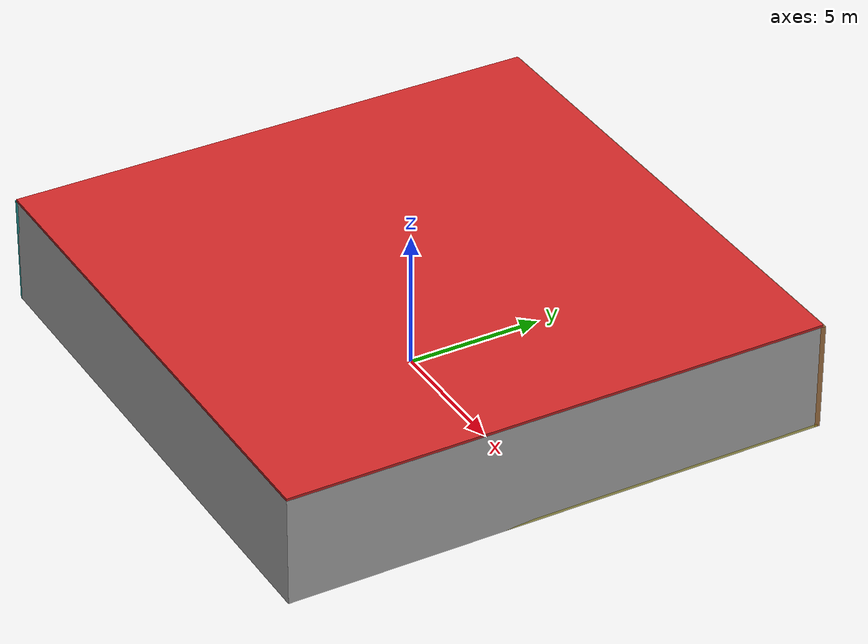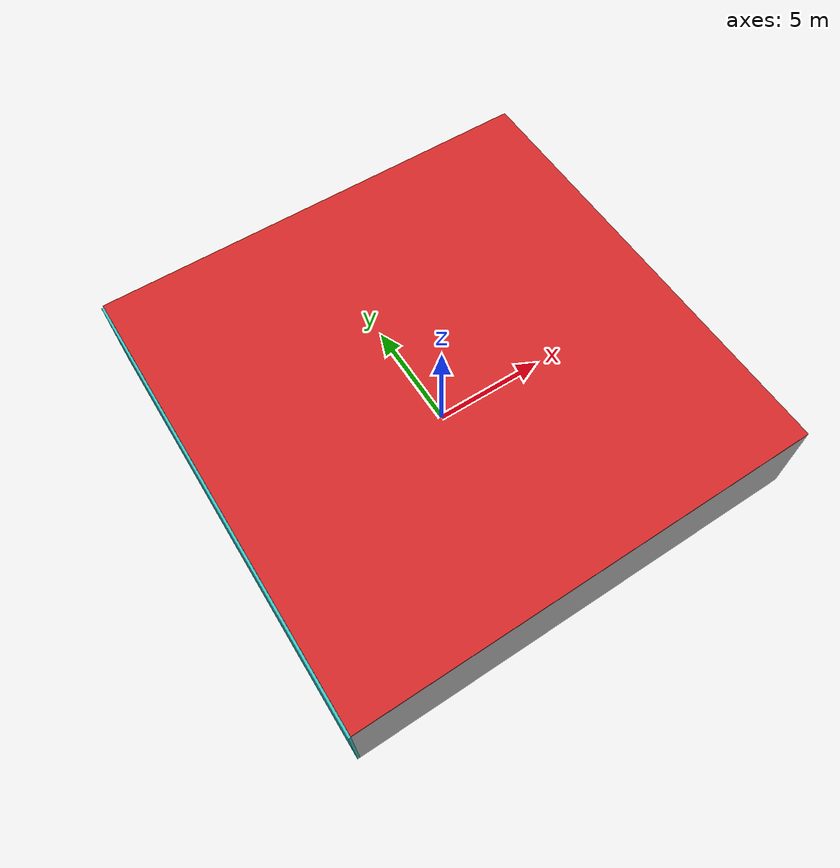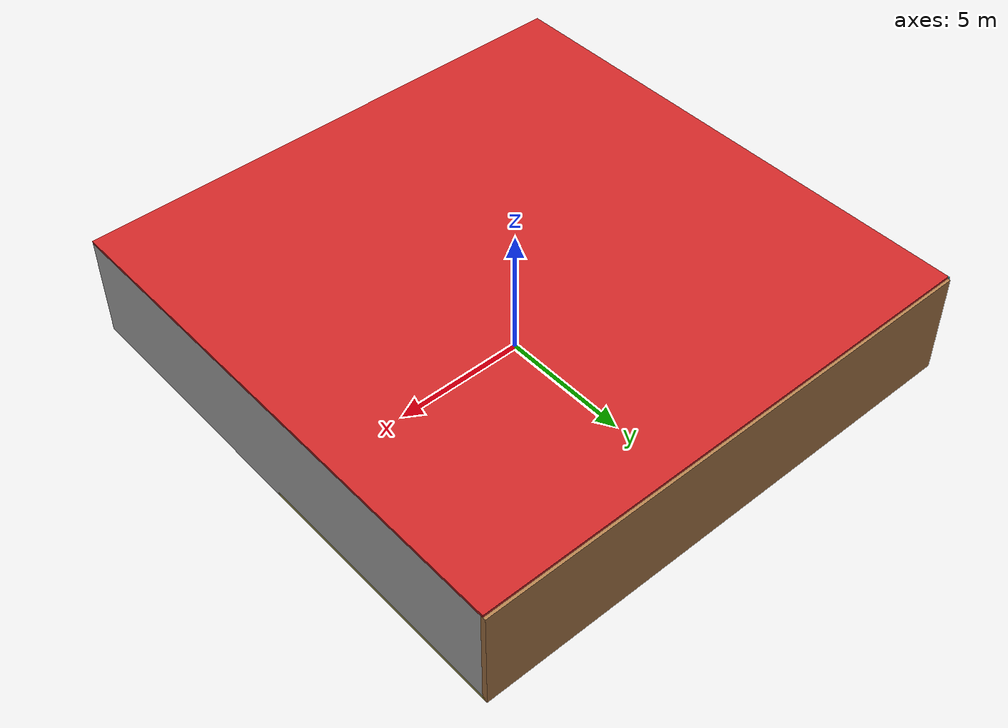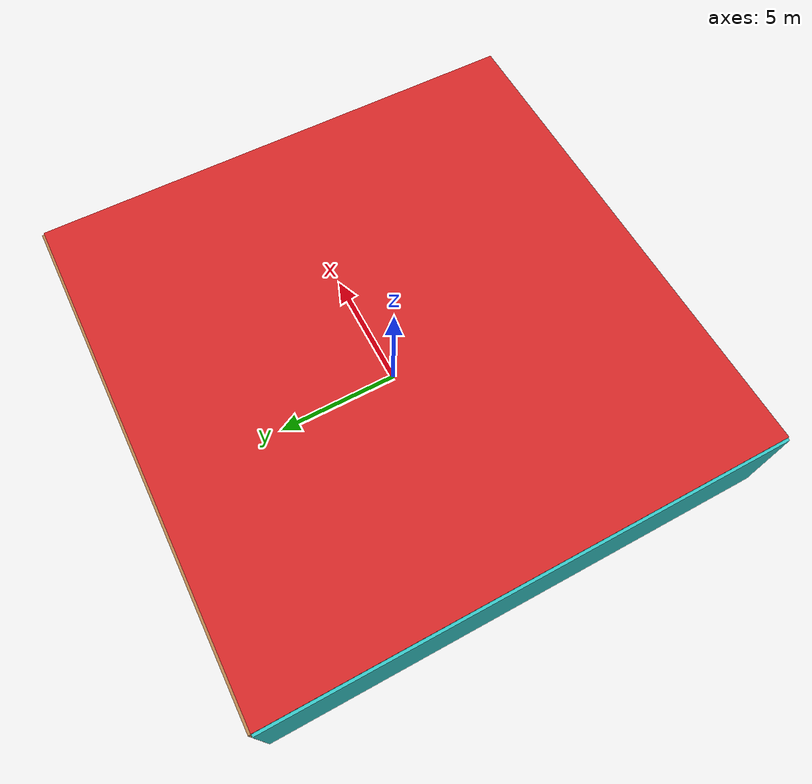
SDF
<sdf version="1.4">
 <world name="default">
  <physics type="ode">
   <max_step_size>0.001</max_step_size>
   <real_time_factor>1</real_time_factor>
   <real_time_update_rate>1000</real_time_update_rate>
   <gravity>0 0 -9.8</gravity>
  </physics>
  <scene><ambient>0.4 0.4 0.4 1</ambient><background>0.7 0.7 0.7 1</background><shadows>1</shadows></scene>
  <model name="Surrounding">
   <static>1</static>
   <link name="Ceiling">
    <collision name="Ceiling_Collision"><geometry><box><size>20 20 0.1</size></box></geometry></collision>
    <visual name="Ceiling_Visual">
     <geometry><box><size>20 20 0.1</size></box></geometry>
     <material>
      <script><uri>file://media/materials/scripts/gazebo.material</uri><name>Gazebo/RedBright</name></script>
     </material>
    </visual>
    <pose>0 0 4.05 0 0 0</pose>
   </link>
   <link name="Wall_South">
    <collision name="Wall_South_Collision">
     <geometry><box><size>20 0 4</size></box></geometry>
     <pose>0 0 2 0 -0 0</pose>
    </collision>
    <visual name="Wall_South_Visual">
     <pose>0 0 2 0 -0 0</pose>
     <geometry><box><size>20 0 4</size></box></geometry>
     <material>
      <script><uri>file://media/materials/scripts/gazebo.material</uri><name>Gazebo/CloudySky</name></script>
     </material>
    </visual>
    <velocity_decay><linear>0</linear><angular>0</angular></velocity_decay>
    <pose>0 -10 0 0 -0 0</pose>
   </link>
   <link name="Wall_East">
    <collision name="Wall_21_Collision">
     <geometry><box><size>20 0 4</size></box></geometry>
     <pose>0 0 2 0 -0 0</pose>
    </collision>
    <visual name="Wall_21_Visual">
     <pose>0 0 2 0 -0 0</pose>
     <geometry><box><size>20 0 4</size></box></geometry>
     <material>
      <script><uri>file://media/materials/scripts/gazebo.material</uri><name>Gazebo/LightOn</name></script>
     </material>
    </visual>
    <velocity_decay><linear>0</linear><angular>0</angular></velocity_decay>
    <pose>10 0 0 0 -0 1.5708</pose>
   </link>
   <link name="Wall_North">
    <collision name="Wall_22_Collision">
     <geometry><box><size>20 0.2 4</size></box></geometry>
     <pose>0 0 2 0 -0 0</pose>
    </collision>
    <visual name="Wall_22_Visual">
     <pose>0 0 2 0 -0 0</pose>
     <geometry><box><size>20 0.2 4</size></box></geometry>
     <material>
      <script><uri>file://media/materials/scripts/gazebo.material</uri><name>Gazebo/WoodFloor</name></script>
     </material>
    </visual>
    <velocity_decay><linear>0</linear><angular>0</angular></velocity_decay>
    <pose>0 10 0 0 -0 0</pose>
   </link>
   <link name="Wall_West">
    <collision name="Wall_23_Collision">
     <geometry><box><size>20 0.2 4</size></box></geometry>
     <pose>0 0 2 0 -0 0</pose>
    </collision>
    <visual name="Wall_23_Visual">
     <pose>0 0 2 0 -0 0</pose>
     <geometry><box><size>20 0.2 4</size></box></geometry>
     <material>
      <script>
       <uri>file://media/materials/scripts/gazebo.material</uri>
       <name>Gazebo/TurquoiseGlowOutline</name>
      </script>
     </material>
    </visual>
    <velocity_decay><linear>0</linear><angular>0</angular></velocity_decay>
    <pose>-10 0 0 0 0 -1.5708</pose>
   </link>
   <link name="Ground_link">
    <collision name="collision">
     <pose>0 0 .05 0 -0 0</pose>
     <geometry><box><size>20 20 0.1</size></box></geometry>
    </collision>
    <visual name="visual">
     <pose>0 0 .05 0 -0 0</pose>
     <geometry><box><size>20 20 0.1</size></box></geometry>
     <material>
      <script>
       <uri>file://media/materials/scripts/gazebo.material</uri>
       <name>Gazebo/YellowTransparent</name>
      </script>
     </material>
    </visual>
   </link>
   <static>1</static>
  </model>
  <spherical_coordinates>
   <surface_model>EARTH_WGS84</surface_model>
   <latitude_deg>0</latitude_deg>
   <longitude_deg>0</longitude_deg>
   <elevation>0</elevation>
   <heading_deg>0</heading_deg>
  </spherical_coordinates>
  <light name="lightball_0" type="diffuse">
   <diffuse>0.8 0.8 0.8 1</diffuse>
   <specular>0.2 0.2 0.2 1</specular>
   <attenuation>
    <range>100</range>
    <constant>0.7</constant>
    <linear>0.01</linear>
    <quadratic>0.001</quadratic>
   </attenuation>
   <direction>-0.5 0.1 -0.9</direction>
   <pose>4.55024645727 -6.06085283524 1.71850608542 0 0 0</pose>
  </light>
  <light name="lightball_1" type="diffuse">
   <diffuse>0.8 0.8 0.8 1</diffuse>
   <specular>0.2 0.2 0.2 1</specular>
   <attenuation>
    <range>100</range>
    <constant>0.7</constant>
    <linear>0.01</linear>
    <quadratic>0.001</quadratic>
   </attenuation>
   <direction>-0.5 0.1 -0.9</direction>
   <pose>5.25745809958 -1.89790049565 3.51312746016 0 0 0</pose>
  </light>
  <light name="lightball_2" type="diffuse">
   <diffuse>0.8 0.8 0.8 1</diffuse>
   <specular>0.2 0.2 0.2 1</specular>
   <attenuation>
    <range>100</range>
    <constant>0.7</constant>
    <linear>0.01</linear>
    <quadratic>0.001</quadratic>
   </attenuation>
   <direction>-0.5 0.1 -0.9</direction>
   <pose>0.274419547409 -3.29379374489 1.21001764339 0 0 0</pose>
  </light>
  <light name="lightball_3" type="diffuse">
   <diffuse>0.8 0.8 0.8 1</diffuse>
   <specular>0.2 0.2 0.2 1</specular>
   <attenuation>
    <range>100</range>
    <constant>0.7</constant>
    <linear>0.01</linear>
    <quadratic>0.001</quadratic>
   </attenuation>
   <direction>-0.5 0.1 -0.9</direction>
   <pose>8.09485586044 7.11113521341 3.3399821976 0 0 0</pose>
  </light>
  <light name="lightball_4" type="diffuse">
   <diffuse>0.8 0.8 0.8 1</diffuse>
   <specular>0.2 0.2 0.2 1</specular>
   <attenuation>
    <range>100</range>
    <constant>0.7</constant>
    <linear>0.01</linear>
    <quadratic>0.001</quadratic>
   </attenuation>
   <direction>-0.5 0.1 -0.9</direction>
   <pose>-8.9336108663 8.6707541832 3.42141891448 0 0 0</pose>
  </light>
  <light name="lightball_5" type="diffuse">
   <diffuse>0.8 0.8 0.8 1</diffuse>
   <specular>0.2 0.2 0.2 1</specular>
   <attenuation>
    <range>100</range>
    <constant>0.7</constant>
    <linear>0.01</linear>
    <quadratic>0.001</quadratic>
   </attenuation>
   <direction>-0.5 0.1 -0.9</direction>
   <pose>-1.660548437 -0.312461696662 3.77266315888 0 0 0</pose>
  </light>
  <light name="lightball_6" type="diffuse">
   <diffuse>0.8 0.8 0.8 1</diffuse>
   <specular>0.2 0.2 0.2 1</specular>
   <attenuation>
    <range>100</range>
    <constant>0.7</constant>
    <linear>0.01</linear>
    <quadratic>0.001</quadratic>
   </attenuation>
   <direction>-0.5 0.1 -0.9</direction>
   <pose>1.87154725847 -3.61634666508 1.46195286727 0 0 0</pose>
  </light>
  <include>
   <uri>model://robocup_3Dsim_goal</uri>
   <pose>-5.18084511599 -7.51273558916 0 0 0 0.301052253635</pose>
  </include>
  <include>
   <uri>model://construction_cone</uri>
   <pose>-4.69034883775 0.356348499919 0 0 0 0.18246847188</pose>
  </include>
  <include><uri>model://cabinet</uri><pose>-0.909871053397 -0.334142444442 0 0 0 3.13162197226</pose></include>
  <include><uri>model://cabinet</uri><pose>1.34038519593 2.31167308676 0 0 0 2.33754403555</pose></include>
  <include><uri>model://cabinet</uri><pose>3.79306176251 -6.48812326048 0 0 0 1.18227117867</pose></include>
  <include>
   <uri>model://robocup_3Dsim_goal</uri>
   <pose>4.08370190654 3.40008744429 0 0 0 1.59614546493</pose>
  </include>
  <include><uri>model://table</uri><pose>5.35006428657 6.88018007206 0 0 0 2.49783840121</pose></include>
  <include>
   <uri>model://robocup_3Dsim_goal</uri>
   <pose>7.21479702029 -8.6313403453 0 0 0 2.35312136369</pose>
  </include>
  <include><uri>model://cabinet</uri><pose>8.6740980221 -4.04730436605 0 0 0 0.536672630644</pose></include>
 </world>
</sdf>

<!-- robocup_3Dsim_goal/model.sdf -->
<sdf version="1.5">
  <model name="robocup_3d_goal">
    <static>true</static>
    <link name="left_post">
      <pose>0 1.05 0.45 0 0 0</pose>
      <collision name="collision">
        <geometry>
          <cylinder>
            <radius>0.05</radius>
            <length>0.9</length>
          </cylinder>
        </geometry>
      </collision>
      <visual name="visual">
        <geometry>
          <cylinder>
            <radius>0.05</radius>
            <length>0.9</length>
          </cylinder>
        </geometry>
        <material>
          <script>
            <uri>file://media/materials/scripts/gazebo.material</uri>
            <name>Gazebo/ZincYellow</name>
          </script>
        </material>
      </visual>
    </link>
    <link name="left_support_horiz_lower">
      <pose>0.30 1.05 0.01 0 0 0</pose>
      <collision name="collision">
        <geometry>
          <box>
            <size>0.50 0.02 0.02</size>
          </box>
        </geometry>
      </collision>
      <visual name="visual">
        <geometry>
          <box>
            <size>0.50 0.02 0.02</size>
          </box>
        </geometry>
        <material>
          <script>
            <uri>file://media/materials/scripts/gazebo.material</uri>
            <name>Gazebo/White</name>
          </script>
        </material>
      </visual>
    </link>
    <link name="left_support_horiz_upper">
      <pose>0.30 1.05 0.79 0 0 0</pose>
      <collision name="collision">
        <geometry>
          <box>
            <size>0.50 0.02 0.02</size>
          </box>
        </geometry>
      </collision>
      <visual name="visual">
        <geometry>
          <box>
            <size>0.50 0.02 0.02</size>
          </box>
        </geometry>
        <material>
          <script>
            <uri>file://media/materials/scripts/gazebo.material</uri>
            <name>Gazebo/White</name>
          </script>
        </material>
      </visual>
    </link>
    <link name="left_support_vertical">
      <pose>0.56 1.05 0.4 0 1.5708 0</pose>
      <collision name="collision">
        <geometry>
          <box>
            <size>0.80 0.02 0.02</size>
          </box>
        </geometry>
      </collision>
      <visual name="visual">
        <geometry>
          <box>
            <size>0.80 0.02 0.02</size>
          </box>
        </geometry>
        <material>
          <script>
            <uri>file://media/materials/scripts/gazebo.material</uri>
            <name>Gazebo/White</name>
          </script>
        </material>
      </visual>
    </link>
    <link name="right_support_horiz_lower">
      <pose>0.30 -1.05 0.01 0 0 0</pose>
      <collision name="collision">
        <geometry>
          <box>
            <size>0.50 0.02 0.02</size>
          </box>
        </geometry>
      </collision>
      <visual name="visual">
        <geometry>
          <box>
            <size>0.50 0.02 0.02</size>
          </box>
        </geometry>
        <material>
          <script>
            <uri>file://media/materials/scripts/gazebo.material</uri>
            <name>Gazebo/White</name>
          </script>
        </material>
      </visual>
    </link>
    <link name="right_support_horiz_upper">
      <pose>0.30 -1.05 0.79 0 0 0</pose>
      <collision name="collision">
        <geometry>
          <box>
            <size>0.50 0.02 0.02</size>
          </box>
        </geometry>
      </collision>
      <visual name="visual">
        <geometry>
          <box>
            <size>0.50 0.02 0.02</size>
          </box>
        </geometry>
        <material>
          <script>
            <uri>file://media/materials/scripts/gazebo.material</uri>
            <name>Gazebo/White</name>
          </script>
        </material>
      </visual>
    </link>
    <link name="right_support_vertical">
      <pose>0.56 -1.05 0.4 0 1.5708 0</pose>
      <collision name="collision">
        <geometry>
          <box>
            <size>0.80 0.02 0.02</size>
          </box>
        </geometry>
      </collision>
      <visual name="visual">
        <geometry>
          <box>
            <size>0.80 0.02 0.02</size>
          </box>
        </geometry>
        <material>
          <script>
            <uri>file://media/materials/scripts/gazebo.material</uri>
            <name>Gazebo/White</name>
          </script>
        </material>
      </visual>
    </link>
    <link name="center_support_horiz_lower">
      <pose>0.56 0 0.01 0 1.5708 0</pose>
      <collision name="collision">
        <geometry>
          <box>
            <size>0.02 2.08 0.02</size>
          </box>
        </geometry>
      </collision>
      <visual name="visual">
        <geometry>
          <box>
            <size>0.02 2.08 0.02</size>
          </box>
        </geometry>
        <material>
          <script>
            <uri>file://media/materials/scripts/gazebo.material</uri>
            <name>Gazebo/White</name>
          </script>
        </material>
      </visual>
    </link>
    <link name="center_support_horiz_upper">
      <pose>0.56 0 0.79 0 1.5708 0</pose>
      <collision name="collision">
        <geometry>
          <box>
            <size>0.02 2.08 0.02</size>
          </box>
        </geometry>
      </collision>
      <visual name="visual">
        <geometry>
          <box>
            <size>0.02 2.08 0.02</size>
          </box>
        </geometry>
        <material>
          <script>
            <uri>file://media/materials/scripts/gazebo.material</uri>
            <name>Gazebo/White</name>
          </script>
        </material>
      </visual>
    </link>
    <link name="right_post">
      <pose>0 -1.05 0.45 0 0 0</pose>
      <collision name="collision">
        <geometry>
          <cylinder>
            <radius>0.05</radius>
            <length>0.9</length>
          </cylinder>
        </geometry>
      </collision>
      <visual name="visual">
        <geometry>
          <cylinder>
            <radius>0.05</radius>
            <length>0.9</length>
          </cylinder>
        </geometry>
        <material>
          <script>
            <uri>file://media/materials/scripts/gazebo.material</uri>
            <name>Gazebo/ZincYellow</name>
          </script>
        </material>
      </visual>
    </link>
    <link name="crossbar">
      <pose>0 0 0.85 1.57 1.57 0</pose>
      <collision name="collision">
        <geometry>
          <cylinder>
            <radius>0.05</radius>
            <length>2.0</length>
          </cylinder>
        </geometry>
      </collision>
      <visual name="visual">
        <geometry>
          <cylinder>
            <radius>0.05</radius>
            <length>2.0</length>
          </cylinder>
        </geometry>
        <material>
          <script>
            <uri>file://media/materials/scripts/gazebo.material</uri>
            <name>Gazebo/ZincYellow</name>
          </script>
        </material>
      </visual>
    </link>
    <link name="center_net">
      <pose>0.56 0 0.40 0 0 0</pose>
      <collision name="collision">
        <geometry>
          <box>
            <size>0.01 2.1 0.80</size>
          </box>
        </geometry>
      </collision>
      <visual name="visual">
        <geometry>
          <box>
            <size>0.01 2.1 0.80</size>
          </box>
        </geometry>
        <material>
          <script>
            <uri>model://../model_source/models/robocup09_spl_field/materials/scripts/</uri>
            <uri>model://../model_source/models/robocup09_spl_field/materials/textures/</uri>
            <name>RoboCup/Net</name>
          </script>
        </material>
      </visual>
    </link>
    <link name="left_net">
      <pose>0.30 1.05 0.40 0 0 0</pose>
      <collision name="collision">
        <geometry>
          <box>
            <size>0.50 0.01 0.76</size>
          </box>
        </geometry>
      </collision>
      <visual name="visual">
        <geometry>
          <box>
            <size>0.50 0.01 0.76</size>
          </box>
        </geometry>
        <material>
          <script>
            <uri>model://../model_source/models/robocup09_spl_field/materials/scripts/</uri>
            <uri>model://../model_source/models/robocup09_spl_field/materials/textures/</uri>
            <name>RoboCup/Net</name>
          </script>
        </material>
      </visual>
    </link>
    <link name="right_net">
      <pose>0.30 -1.05 0.40 0 0 0</pose>
      <collision name="collision">
        <geometry>
          <box>
            <size>0.50 0.01 0.76</size>
          </box>
        </geometry>
      </collision>
      <visual name="visual">
        <geometry>
          <box>
            <size>0.50 0.01 0.76</size>
          </box>
        </geometry>
        <material>
          <script>
            <uri>model://../model_source/models/robocup09_spl_field/materials/scripts/</uri>
            <uri>model://../model_source/models/robocup09_spl_field/materials/textures/</uri>
            <name>RoboCup/Net</name>
          </script>
        </material>
      </visual>
    </link>
  </model>
</sdf>

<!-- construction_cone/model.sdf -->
<sdf version="1.5">
  <model name="Construction Cone">
    <link name="link">
      <collision name="collision">
        <geometry>
          <mesh>
            <scale>10 10 10</scale>
            <uri>file://isr-testbed/construction_cone/meshes/construction_cone.dae</uri>
          </mesh>
        </geometry>
      </collision>
      <visual name="visual">
        <geometry>
          <mesh>
            <scale>10 10 10</scale>
            <uri>file://isr-testbed/construction_cone/meshes/construction_cone.dae</uri>
          </mesh>
        </geometry>
      </visual>
    </link>
  </model>
</sdf>

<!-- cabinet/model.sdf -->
<sdf version="1.5">
  <model name="cabinet">
    <static>true</static>
    <link name="cabinet_bottom_plate">
      <inertial>
        <pose>0 0 -1 0 0 0</pose>
        <inertia>
          <ixx>2.050000</ixx>
          <ixy>0</ixy>
          <ixz>0</ixz>
          <iyy>2.050000</iyy>
          <iyz>0</iyz>
          <izz>2.050000</izz>
        </inertia>
        <mass>25.000000</mass>
      </inertial>
      <collision name="cabinet_bottom_plate_geom">
        <pose>0 0 0.010000 0 0 0</pose>
        <geometry>
          <box>
            <size>0.450000 0.450000 0.020000</size>
          </box>
        </geometry>
      </collision>
      <visual name="cabinet_bottom_plate_geom_visual">
        <pose>0 0 0.010000 0 0 0</pose>
        <geometry>
          <box>
            <size>0.450000 0.450000 0.020000</size>
          </box>
        </geometry>
        <material>
          <script>
            <uri>model://media/materials/scripts/gazebo.material</uri>
            <name>Gazebo/Wood</name>
          </script>
        </material>
      </visual>
      <collision name="cabinet_bottom_plate_geom_cabinet_back_plate">
        <pose>0.235000 0 0.510000 0 0 0</pose>
        <geometry>
          <box>
            <size>0.020000 0.450000 1.020000</size>
          </box>
        </geometry>
      </collision>
      <visual name="cabinet_bottom_plate_geom_cabinet_back_plate_visual">
        <pose>0.235000 0 0.510000 0 0 0</pose>
        <geometry>
          <box>
            <size>0.020000 0.450000 1.020000</size>
          </box>
        </geometry>
        <material>
          <script>
            <uri>model://media/materials/scripts/gazebo.material</uri>
            <name>Gazebo/Wood</name>
          </script>
        </material>
      </visual>
      <collision name="cabinet_bottom_plate_geom_cabinet_left_plate">
        <pose>0 0.235000 0.510000 0 0 0</pose>
        <geometry>
          <box>
            <size>0.450000 0.020000 1.020000</size>
          </box>
        </geometry>
      </collision>
      <visual name="cabinet_bottom_plate_geom_cabinet_left_plate_visual">
        <pose>0 0.235000 0.510000 0 0 0</pose>
        <geometry>
          <box>
            <size>0.450000 0.020000 1.020000</size>
          </box>
        </geometry>
        <material>
          <script>
            <uri>model://media/materials/scripts/gazebo.material</uri>
            <name>Gazebo/Wood</name>
          </script>
        </material>
      </visual>
      <collision name="cabinet_bottom_plate_geom_cabinet_middle_plate">
        <pose>0 0 0.510000 0 0 0</pose>
        <geometry>
          <box>
            <size>0.450000 0.450000 0.020000</size>
          </box>
        </geometry>
      </collision>
      <visual name="cabinet_bottom_plate_geom_cabinet_middle_plate_visual">
        <pose>0 0 0.510000 0 0 0</pose>
        <geometry>
          <box>
            <size>0.450000 0.450000 0.020000</size>
          </box>
        </geometry>
        <material>
          <script>
            <uri>model://media/materials/scripts/gazebo.material</uri>
            <name>Gazebo/Wood</name>
          </script>
        </material>
      </visual>
      <collision name="cabinet_bottom_plate_geom_cabinet_right_plate">
        <pose>0 -0.235000 0.510000 0 0 0</pose>
        <geometry>
          <box>
            <size>0.450000 0.020000 1.020000</size>
          </box>
        </geometry>
      </collision>
      <visual name="cabinet_bottom_plate_geom_cabinet_right_plate_visual">
        <pose>0 -0.235000 0.510000 0 0 0</pose>
        <geometry>
          <box>
            <size>0.450000 0.020000 1.020000</size>
          </box>
        </geometry>
        <material>
          <script>
            <uri>model://media/materials/scripts/gazebo.material</uri>
            <name>Gazebo/Wood</name>
          </script>
        </material>
      </visual>
      <collision name="cabinet_bottom_plate_geom_cabinet_top_plate">
        <pose>0 0 1.010000 0 0 0</pose>
        <geometry>
          <box>
            <size>0.450000 0.450000 0.020000</size>
          </box>
        </geometry>
      </collision>
      <visual name="cabinet_bottom_plate_geom_cabinet_top_plate_visual">
        <pose>0 0 1.010000 0 0 0</pose>
        <geometry>
          <box>
            <size>0.450000 0.450000 0.020000</size>
          </box>
        </geometry>
        <material>
          <script>
            <uri>model://media/materials/scripts/gazebo.material</uri>
            <name>Gazebo/Wood</name>
          </script>
        </material>
      </visual>
    </link>
  </model>
</sdf>

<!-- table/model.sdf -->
<sdf version="1.5">
  <model name="table">
    <static>true</static>
    <link name="link">
      <collision name="surface">
        <pose>0 0 1.0 0 0 0</pose>
        <geometry>
          <box>
            <size>1.5 0.8 0.03</size>
          </box>
        </geometry>
        <surface>
          <friction>
            <ode>
              <mu>0.6</mu>
              <mu2>0.6</mu2>
            </ode>
          </friction>
        </surface>
      </collision>
      <visual name="visual1">
        <pose>0 0 1.0 0 0 0</pose>
        <geometry>
          <box>
            <size>1.5 0.8 0.03</size>
          </box>
        </geometry>
        <material>
          <script>
            <uri>model://media/materials/scripts/gazebo.material</uri>
            <name>Gazebo/Wood</name>
          </script>
        </material>
      </visual>
      <collision name="front_left_leg">
        <pose>0.68 0.38 0.5 0 0 0</pose>
        <geometry>
          <cylinder>
            <radius>0.02</radius>
            <length>1.0</length>
          </cylinder>
        </geometry>
      </collision>
      <visual name="front_left_leg">
        <pose>0.68 0.38 0.5 0 0 0</pose>
        <geometry>
          <cylinder>
            <radius>0.02</radius>
            <length>1.0</length>
          </cylinder>
        </geometry>
        <material>
          <script>
            <uri>model://media/materials/scripts/gazebo.material</uri>
            <name>Gazebo/Grey</name>
          </script>
        </material>
      </visual>
      <collision name="front_right_leg">
        <pose>0.68 -0.38 0.5 0 0 0</pose>
        <geometry>
          <cylinder>
            <radius>0.02</radius>
            <length>1.0</length>
          </cylinder>
        </geometry>
      </collision>
      <visual name="front_right_leg">
        <pose>0.68 -0.38 0.5 0 0 0</pose>
        <geometry>
          <cylinder>
            <radius>0.02</radius>
            <length>1.0</length>
          </cylinder>
        </geometry>
        <material>
          <script>
            <uri>model://media/materials/scripts/gazebo.material</uri>
            <name>Gazebo/Grey</name>
          </script>
        </material>
      </visual>
      <collision name="back_right_leg">
        <pose>-0.68 -0.38 0.5 0 0 0</pose>
        <geometry>
          <cylinder>
            <radius>0.02</radius>
            <length>1.0</length>
          </cylinder>
        </geometry>
      </collision>
      <visual name="back_right_leg">
        <pose>-0.68 -0.38 0.5 0 0 0</pose>
        <geometry>
          <cylinder>
            <radius>0.02</radius>
            <length>1.0</length>
          </cylinder>
        </geometry>
        <material>
          <script>
            <uri>model://media/materials/scripts/gazebo.material</uri>
            <name>Gazebo/Grey</name>
          </script>
        </material>
      </visual>
      <collision name="back_left_leg">
        <pose>-0.68 0.38 0.5 0 0 0</pose>
        <geometry>
          <cylinder>
            <radius>0.02</radius>
            <length>1.0</length>
          </cylinder>
        </geometry>
      </collision>
      <visual name="back_left_leg">
        <pose>-0.68 0.38 0.5 0 0 0</pose>
        <geometry>
          <cylinder>
            <radius>0.02</radius>
            <length>1.0</length>
          </cylinder>
        </geometry>
        <material>
          <script>
            <uri>model://media/materials/scripts/gazebo.material</uri>
            <name>Gazebo/Grey</name>
          </script>
        </material>
      </visual>
    </link>
  </model>
</sdf>
